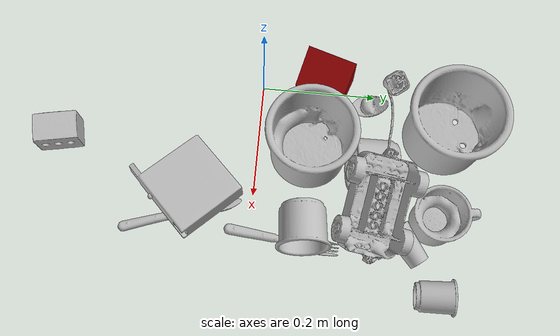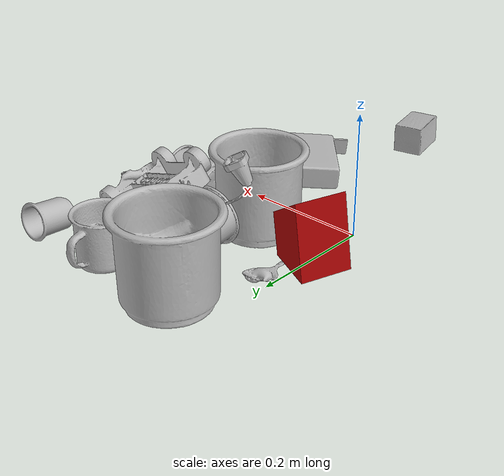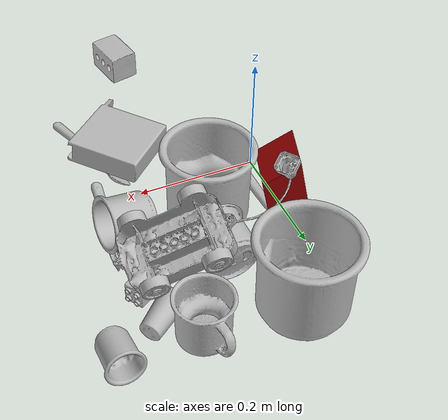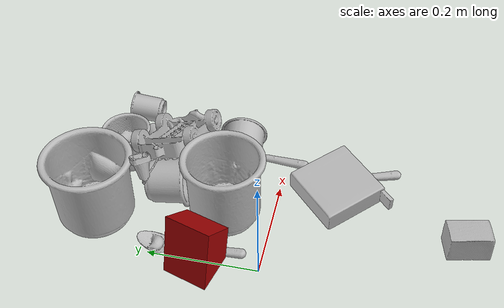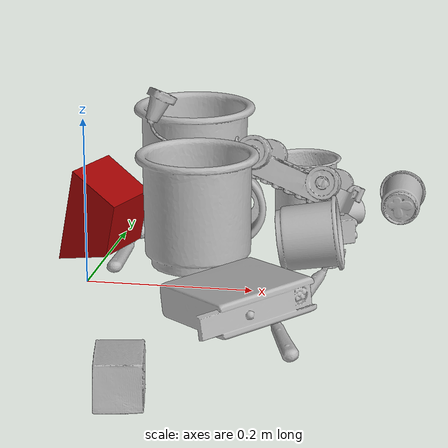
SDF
<sdf version="1.4">
  <world name="default">
    <light name="light1" type="point">
      <pose>0 0 1 0 0 0</pose>
      <diffuse>3 3 3 1</diffuse>
      <specular>3 3 3 1</specular>
    </light>
    <light name="light2" type="point">
      <pose>0 0.5 2 0 0 0</pose>
      <diffuse>1 1 1 1</diffuse>
      <specular>1 1 1 1</specular>
    </light>
    <light name="light3" type="point">
      <pose>0 0.5 2 0 0 0</pose>
      <diffuse>3 3 3 1</diffuse>
      <specular>3 3 3 1</specular>
    </light>
    <scene>
      <ambient>0.7 0.7 0.7</ambient>
    </scene>
    <model name="cup1">
      <link name="link_cup1">
        <collision name="default">
          <geometry>
            <mesh>
              <uri>model://i_cups/collision_meshes/collision.obj</uri>
              <scale>1.0 1.0 1.0</scale>
            </mesh>
          </geometry>
          <surface>
            <friction>
              <ode>
                <mu>0.5</mu>
                <mu2>0.5</mu2>
              </ode>
            </friction>
          <contact>
        <ode>
            <max_vel>0</max_vel>
            <min_depth>0.0001</min_depth>
            <kp>1e8</kp>
        </ode>
    </contact></surface>
        </collision>
        <visual name="default">
          <geometry>
            <mesh>
              <uri>model://i_cups/visual_meshes/visual.dae</uri>
              <scale>1.0 1.0 1.0</scale>
            </mesh>
          </geometry>
        </visual>
        <inertial>
          <mass>0.06118306145071983</mass>
          <pose>0.00011240330786677077 0.00016797454736661166 -0.0008579033892601728 -0.02898356853937009 -0.0398729445813228 -0.3459020996231002</pose>
          <inertia>
            <ixx>8.470886e-05</ixx>
            <iyy>8.5455235e-05</iyy>
            <izz>9.467588e-05</izz>
            <ixy>0</ixy>
            <ixz>0</ixz>
            <iyz>0</iyz>
          </inertia>
        </inertial>
      </link>
      <pose>0.137911856174469 0.1971147656440735 0.045090898871421814 -1.4454913836028682 -0.3477538787687133 -3.1110849873726925</pose>
    </model>
    <model name="silverware1">
      <link name="link_silverware1">
        <collision name="default">
          <geometry>
            <mesh>
              <uri>model://fork/collision_meshes/collision.obj</uri>
              <scale>1.0 1.0 1.0</scale>
            </mesh>
          </geometry>
          <surface>
            <friction>
              <ode>
                <mu>0.5</mu>
                <mu2>0.5</mu2>
              </ode>
            </friction>
          <contact>
        <ode>
            <max_vel>0</max_vel>
            <min_depth>0.0001</min_depth>
            <kp>1e8</kp>
        </ode>
    </contact></surface>
        </collision>
        <visual name="default">
          <geometry>
            <mesh>
              <uri>model://fork/visual_meshes/visual.dae</uri>
              <scale>1.0 1.0 1.0</scale>
            </mesh>
          </geometry>
        </visual>
        <inertial>
          <mass>0.031184576451778412</mass>
          <pose>-0.02957005426287651 0.00046588247641921043 0.0003218861820641905 -0.013551007459636681 -0.010977840933376642 0.014453907264632249</pose>
          <inertia>
            <ixx>1.0931959e-06</ixx>
            <iyy>8.1413935e-05</iyy>
            <izz>8.1902916e-05</izz>
            <ixy>0</ixy>
            <ixz>0</ixz>
            <iyz>0</iyz>
          </inertia>
        </inertial>
      </link>
      <pose>0.27397236227989197 0.05497124791145325 0.005225706845521927 -0.01686002213252174 0.05009357980873314 1.4702113845119376</pose>
    </model>
    <model name="cup2">
      <link name="link_cup2">
        <collision name="default">
          <geometry>
            <mesh>
              <uri>model://cup_small/collision_meshes/collision.obj</uri>
              <scale>1.0 1.0 1.0</scale>
            </mesh>
          </geometry>
          <surface>
            <friction>
              <ode>
                <mu>0.5</mu>
                <mu2>0.5</mu2>
              </ode>
            </friction>
          <contact>
        <ode>
            <max_vel>0</max_vel>
            <min_depth>0.0001</min_depth>
            <kp>1e8</kp>
        </ode>
    </contact></surface>
        </collision>
        <visual name="default">
          <geometry>
            <mesh>
              <uri>model://cup_small/visual_meshes/visual.dae</uri>
              <scale>1.0 1.0 1.0</scale>
            </mesh>
          </geometry>
        </visual>
        <inertial>
          <mass>0.03407767415046692</mass>
          <pose>0.0001048250705935061 -0.00033778452780097723 -0.010742825455963612 -0.011493231776776816 -0.015280154496379641 -0.5058119732839097</pose>
          <inertia>
            <ixx>2.0064415e-05</ixx>
            <iyy>2.0167918e-05</iyy>
            <izz>9.059144e-06</izz>
            <ixy>0</ixy>
            <ixz>0</ixz>
            <iyz>0</iyz>
          </inertia>
        </inertial>
      </link>
      <pose>0.2662173807621002 0.2664949297904968 0.020216787233948708 0.9435692638728823 -1.4373076129044606 -0.27826307907034953</pose>
    </model>
    <model name="silverware2">
      <link name="link_silverware2">
        <collision name="default">
          <geometry>
            <mesh>
              <uri>model://spoon/collision_meshes/collision.obj</uri>
              <scale>1.0 1.0 1.0</scale>
            </mesh>
          </geometry>
          <surface>
            <friction>
              <ode>
                <mu>0.5</mu>
                <mu2>0.5</mu2>
              </ode>
            </friction>
          <contact>
        <ode>
            <max_vel>0</max_vel>
            <min_depth>0.0001</min_depth>
            <kp>1e8</kp>
        </ode>
    </contact></surface>
        </collision>
        <visual name="default">
          <geometry>
            <mesh>
              <uri>model://spoon/visual_meshes/visual.dae</uri>
              <scale>1.0 1.0 1.0</scale>
            </mesh>
          </geometry>
        </visual>
        <inertial>
          <mass>0.016614587977528572</mass>
          <pose>-0.005526317749172449 -0.0016034182626754045 -0.0007271657232195139 0.03521671066550848 -0.039065848782153245 0.0061506117821598484</pose>
          <inertia>
            <ixx>9.241303e-07</ixx>
            <iyy>6.321795e-05</iyy>
            <izz>6.367369e-05</izz>
            <ixy>0</ixy>
            <ixz>0</ixz>
            <iyz>0</iyz>
          </inertia>
        </inertial>
      </link>
      <pose>0.019375192001461983 0.1260458379983902 0.00838090293109417 -0.051893142883563545 0.02641216033746181 1.6043006527798247</pose>
    </model>
    <model name="cup3">
      <link name="link_cup3">
        <collision name="default">
          <geometry>
            <mesh>
              <uri>model://mug/collision_meshes/collision.obj</uri>
              <scale>1.0 1.0 1.0</scale>
            </mesh>
          </geometry>
          <surface>
            <friction>
              <ode>
                <mu>0.5</mu>
                <mu2>0.5</mu2>
              </ode>
            </friction>
          <contact>
        <ode>
            <max_vel>0</max_vel>
            <min_depth>0.0001</min_depth>
            <kp>1e8</kp>
        </ode>
    </contact></surface>
        </collision>
        <visual name="default">
          <geometry>
            <mesh>
              <uri>model://mug/visual_meshes/visual.dae</uri>
              <scale>1.0 1.0 1.0</scale>
            </mesh>
          </geometry>
        </visual>
        <inertial>
          <mass>0.2187051922082901</mass>
          <pose>0.009571668691933155 0.0008143252925947309 -0.0109473317861557 -0.1298317614392908 0.08737757629698793 0.05507296169044089</pose>
          <inertia>
            <ixx>0.00021724429</ixx>
            <iyy>0.00024264908</iyy>
            <izz>0.00028062687</izz>
            <ixy>0</ixy>
            <ixz>0</ixz>
            <iyz>0</iyz>
          </inertia>
        </inertial>
      </link>
      <pose>0.21747452020645142 0.32034194469451904 0.040949366986751556 -2.987352175906911e-05 3.1296757378841e-05 -1.4240055473247306</pose>
    </model>
    <model name="silverware3">
      <link name="link_silverware3">
        <collision name="default">
          <geometry>
            <mesh>
              <uri>model://knife/collision_meshes/collision.obj</uri>
              <scale>1.0 1.0 1.0</scale>
            </mesh>
          </geometry>
          <surface>
            <friction>
              <ode>
                <mu>0.5</mu>
                <mu2>0.5</mu2>
              </ode>
            </friction>
          <contact>
        <ode>
            <max_vel>0</max_vel>
            <min_depth>0.0001</min_depth>
            <kp>1e8</kp>
        </ode>
    </contact></surface>
        </collision>
        <visual name="default">
          <geometry>
            <mesh>
              <uri>model://knife/visual_meshes/visual.dae</uri>
              <scale>1.0 1.0 1.0</scale>
            </mesh>
          </geometry>
        </visual>
        <inertial>
          <mass>0.02527560666203499</mass>
          <pose>-0.02378525398671627 0.0015275124460458755 5.062016498413868e-05 0.07305987488321217 0.01724841707462807 -0.007409821427235137</pose>
          <inertia>
            <ixx>7.174241e-07</ixx>
            <iyy>9.710476e-05</iyy>
            <izz>9.733581e-05</izz>
            <ixy>0</ixy>
            <ixz>0</ixz>
            <iyz>0</iyz>
          </inertia>
        </inertial>
      </link>
      <pose>0.24850934743881226 -0.11972462385892868 0.008113625459372997 -0.2240786848024878 -0.010656101877921223 1.8752030927615078</pose>
    </model>
    <model name="cup4">
      <link name="link_cup4">
        <collision name="default">
          <geometry>
            <mesh>
              <uri>model://f_cups/collision_meshes/collision.obj</uri>
              <scale>2.0 2.0 2.0</scale>
            </mesh>
          </geometry>
          <surface>
            <friction>
              <ode>
                <mu>0.5</mu>
                <mu2>0.5</mu2>
              </ode>
            </friction>
          <contact>
        <ode>
            <max_vel>0</max_vel>
            <min_depth>0.0001</min_depth>
            <kp>1e8</kp>
        </ode>
    </contact></surface>
        </collision>
        <visual name="default">
          <geometry>
            <mesh>
              <uri>model://f_cups/visual_meshes/visual.dae</uri>
              <scale>2.0 2.0 2.0</scale>
            </mesh>
          </geometry>
        </visual>
        <inertial>
          <mass>0.45639780163764954</mass>
          <pose>-0.006342936772853136 -0.0012480145087465644 -0.007311072666198015 0.7862311529960513 -0.2607925047248709 -0.18237200478465204</pose>
          <inertia>
            <ixx>0.0017161043</ixx>
            <iyy>0.0018002132</iyy>
            <izz>0.0018740727</izz>
            <ixy>0</ixy>
            <ixz>0</ixz>
            <iyz>0</iyz>
          </inertia>
        </inertial>
      </link>
      <pose>0.06835680454969406 0.31898730993270874 0.07261201739311218 -1.3747842924344905e-07 -2.650499405256658e-07 2.8065729920839764</pose>
    </model>
    <model name="cup41">
      <link name="link_cup41">
        <collision name="default">
          <geometry>
            <mesh>
              <uri>model://b_cups/collision_meshes/collision.obj</uri>
              <scale>1.0 1.0 1.0</scale>
            </mesh>
          </geometry>
          <surface>
            <friction>
              <ode>
                <mu>0.5</mu>
                <mu2>0.5</mu2>
              </ode>
            </friction>
          <contact>
        <ode>
            <max_vel>0</max_vel>
            <min_depth>0.0001</min_depth>
            <kp>1e8</kp>
        </ode>
    </contact></surface>
        </collision>
        <visual name="default">
          <geometry>
            <mesh>
              <uri>model://b_cups/visual_meshes/visual.dae</uri>
              <scale>1.0 1.0 1.0</scale>
            </mesh>
          </geometry>
        </visual>
        <inertial>
          <mass>0.02191556617617607</mass>
          <pose>0.0005182005115784705 0.0018058598507195711 -0.0013381809694692492 0.11356347292067202 0.038725069075056226 -0.34569439603942165</pose>
          <inertia>
            <ixx>1.4345273e-05</ixx>
            <iyy>1.4072923e-05</iyy>
            <izz>1.2071279e-05</izz>
            <ixy>0</ixy>
            <ixz>0</ixz>
            <iyz>0</iyz>
          </inertia>
        </inertial>
      </link>
      <pose>0.3477432429790497 0.3109341561794281 0.027763718739151955 -1.4789781643042381 -0.01002395111958243 0.027336113688217277</pose>
    </model>
    <model name="cup5">
      <link name="link_cup5">
        <collision name="default">
          <geometry>
            <mesh>
              <uri>model://e_cups/collision_meshes/collision.obj</uri>
              <scale>2.0 2.0 2.0</scale>
            </mesh>
          </geometry>
          <surface>
            <friction>
              <ode>
                <mu>0.5</mu>
                <mu2>0.5</mu2>
              </ode>
            </friction>
          <contact>
        <ode>
            <max_vel>0</max_vel>
            <min_depth>0.0001</min_depth>
            <kp>1e8</kp>
        </ode>
    </contact></surface>
        </collision>
        <visual name="default">
          <geometry>
            <mesh>
              <uri>model://e_cups/visual_meshes/visual.dae</uri>
              <scale>2.0 2.0 2.0</scale>
            </mesh>
          </geometry>
        </visual>
        <inertial>
          <mass>0.30448246002197266</mass>
          <pose>0.0022711469791829586 0.005759572610259056 -0.00776594178751111 0.6952384510578399 0.08767941436067322 -0.5235260729612989</pose>
          <inertia>
            <ixx>0.0010739095</ixx>
            <iyy>0.001122389</iyy>
            <izz>0.0010267813</izz>
            <ixy>0</ixy>
            <ixz>0</ixz>
            <iyz>0</iyz>
          </inertia>
        </inertial>
      </link>
      <pose>0.11748873442411423 0.08768656849861145 0.07120021432638168 -6.74533639968994e-06 4.268848543203527e-06 3.085765624612968</pose>
    </model>
    <model name="cup51">
      <link name="link_cup51">
        <collision name="default">
          <geometry>
            <mesh>
              <uri>model://h_cups/collision_meshes/collision.obj</uri>
              <scale>1.0 1.0 1.0</scale>
            </mesh>
          </geometry>
          <surface>
            <friction>
              <ode>
                <mu>0.5</mu>
                <mu2>0.5</mu2>
              </ode>
            </friction>
          <contact>
        <ode>
            <max_vel>0</max_vel>
            <min_depth>0.0001</min_depth>
            <kp>1e8</kp>
        </ode>
    </contact></surface>
        </collision>
        <visual name="default">
          <geometry>
            <mesh>
              <uri>model://h_cups/visual_meshes/visual.dae</uri>
              <scale>1.0 1.0 1.0</scale>
            </mesh>
          </geometry>
        </visual>
        <inertial>
          <mass>0.042455922812223434</mass>
          <pose>-2.703044083318673e-05 0.00023018660431262106 -0.0018405403243377805 -0.024361995264993386 0.06545231449212868 0.1288536550905752</pose>
          <inertia>
            <ixx>5.4829856e-05</ixx>
            <iyy>5.4175573e-05</iyy>
            <izz>5.7501496e-05</izz>
            <ixy>0</ixy>
            <ixz>0</ixz>
            <iyz>0</iyz>
          </inertia>
        </inertial>
      </link>
      <pose>0.255367636680603 0.08854466676712036 0.043067123740911484 -1.3986729986841393 0.6286986251991737 -1.3718659997425402</pose>
    </model>
    <model name="toy1">
      <link name="link_toy1">
        <collision name="default">
          <geometry>
            <mesh>
              <uri>model://f_lego_duplo/collision_meshes/collision.obj</uri>
              <scale>1.0 1.0 1.0</scale>
            </mesh>
          </geometry>
          <surface>
            <friction>
              <ode>
                <mu>0.5</mu>
                <mu2>0.5</mu2>
              </ode>
            </friction>
          <contact>
        <ode>
            <max_vel>0</max_vel>
            <min_depth>0.0001</min_depth>
            <kp>1e8</kp>
        </ode>
    </contact></surface>
        </collision>
        <visual name="default">
          <geometry>
            <mesh>
              <uri>model://f_lego_duplo/visual_meshes/visual.dae</uri>
              <scale>1.0 1.0 1.0</scale>
            </mesh>
          </geometry>
        </visual>
        <inertial>
          <mass>0.02241816557943821</mass>
          <pose>2.3694117771810852e-05 0.0001339316659141332 0.0018837875686585903 0.029838520561624126 -0.014425134948969536 -0.6756620822172864</pose>
          <inertia>
            <ixx>4.7370827e-06</ixx>
            <iyy>4.779284e-06</iyy>
            <izz>4.1119874e-06</izz>
            <ixy>0</ixy>
            <ixz>0</ixz>
            <iyz>0</iyz>
          </inertia>
        </inertial>
      </link>
      <pose>0.2762646973133087 0.20650096237659454 0.016231831163167953 1.9266007501883309 1.5693188032392862 2.4695931887632625</pose>
    </model>
    <model name="toy2">
      <link name="link_toy2">
        <collision name="default">
          <geometry>
            <mesh>
              <uri>model://nine_hole_peg_test/collision_meshes/collision.obj</uri>
              <scale>1.0 1.0 1.0</scale>
            </mesh>
          </geometry>
          <surface>
            <friction>
              <ode>
                <mu>0.5</mu>
                <mu2>0.5</mu2>
              </ode>
            </friction>
          <contact>
        <ode>
            <max_vel>0</max_vel>
            <min_depth>0.0001</min_depth>
            <kp>1e8</kp>
        </ode>
    </contact></surface>
        </collision>
        <visual name="default">
          <geometry>
            <mesh>
              <uri>model://nine_hole_peg_test/visual_meshes/visual.dae</uri>
              <scale>1.0 1.0 1.0</scale>
            </mesh>
          </geometry>
        </visual>
        <inertial>
          <mass>0.9336897134780884</mass>
          <pose>-0.004617386497557163 -0.009647615253925323 2.6460686058271676e-05 -0.0014666796876693252 0.0007194179493738156 -0.6342417556307235</pose>
          <inertia>
            <ixx>0.0014599775</ixx>
            <iyy>0.0013631656</iyy>
            <izz>0.0025583105</izz>
            <ixy>0</ixy>
            <ixz>0</ixz>
            <iyz>0</iyz>
          </inertia>
        </inertial>
      </link>
      <pose>0.19720865786075592 -0.1170077696442604 0.029206762090325356 -3.066685250648717 -0.07765992232668824 -0.8031388772374235</pose>
    </model>
    <model name="toy3">
      <link name="link_toy3">
        <collision name="default">
          <geometry>
            <mesh>
              <uri>model://prism/collision_meshes/collision.obj</uri>
              <scale>1.0 1.0 1.0</scale>
            </mesh>
          </geometry>
          <surface>
            <friction>
              <ode>
                <mu>0.5</mu>
                <mu2>0.5</mu2>
              </ode>
            </friction>
          <contact>
        <ode>
            <max_vel>0</max_vel>
            <min_depth>0.0001</min_depth>
            <kp>1e8</kp>
        </ode>
    </contact></surface>
        </collision>
        <visual name="default">
          <geometry>
            <mesh>
              <uri>model://prism/visual_meshes/visual.dae</uri>
              <scale>1.0 1.0 1.0</scale>
            </mesh>
          </geometry>
        </visual>
        <inertial>
          <mass>0.45664992928504944</mass>
          <pose>-9.85359656624496e-05 -4.96157269935793e-07 -0.0033869100734591484 0.0 0.006559178903460961 0.0</pose>
          <inertia>
            <ixx>0.0004121209</ixx>
            <iyy>0.00049805344</iyy>
            <izz>0.0006100559</izz>
            <ixy>0</ixy>
            <ixz>0</ixz>
            <iyz>0</iyz>
          </inertia>
        </inertial>
      </link>
      <pose>-0.0029847794212400913 0.10644311457872391 0.05111259967088699 -3.119087364602294 -1.3668830407845998 -0.32963682944050315</pose>
    </model>
    <model name="toy4">
      <link name="link_toy4">
        <collision name="default">
          <geometry>
            <mesh>
              <uri>model://g_lego_duplo/collision_meshes/collision.obj</uri>
              <scale>1.0 1.0 1.0</scale>
            </mesh>
          </geometry>
          <surface>
            <friction>
              <ode>
                <mu>0.5</mu>
                <mu2>0.5</mu2>
              </ode>
            </friction>
          <contact>
        <ode>
            <max_vel>0</max_vel>
            <min_depth>0.0001</min_depth>
            <kp>1e8</kp>
        </ode>
    </contact></surface>
        </collision>
        <visual name="default">
          <geometry>
            <mesh>
              <uri>model://g_lego_duplo/visual_meshes/visual.dae</uri>
              <scale>1.0 1.0 1.0</scale>
            </mesh>
          </geometry>
        </visual>
        <inertial>
          <mass>0.39620378613471985</mass>
          <pose>-0.05004769191145897 0.0017554654041305184 0.003880677744746208 0.010963058510667364 0.03810828654928447 -0.09653021192595126</pose>
          <inertia>
            <ixx>0.0005741041</ixx>
            <iyy>0.0017357017</iyy>
            <izz>0.0021714251</izz>
            <ixy>0</ixy>
            <ixz>0</ixz>
            <iyz>0</iyz>
          </inertia>
        </inertial>
      </link>
      <pose>0.1629491001367569 0.20783314108848572 0.10777037590742111 -2.8264735489067747 -0.3380021028432425 2.9889589523059397</pose>
    </model>
    <model name="toy5">
      <link name="link_toy5">
        <collision name="default">
          <geometry>
            <mesh>
              <uri>model://foam_brick/collision_meshes/collision.obj</uri>
              <scale>1.0 1.0 1.0</scale>
            </mesh>
          </geometry>
          <surface>
            <friction>
              <ode>
                <mu>0.5</mu>
                <mu2>0.5</mu2>
              </ode>
            </friction>
          <contact>
        <ode>
            <max_vel>0</max_vel>
            <min_depth>0.0001</min_depth>
            <kp>1e8</kp>
        </ode>
    </contact></surface>
        </collision>
        <visual name="default">
          <geometry>
            <mesh>
              <uri>model://foam_brick/visual_meshes/visual.dae</uri>
              <scale>1.0 1.0 1.0</scale>
            </mesh>
          </geometry>
        </visual>
        <inertial>
          <mass>0.10564772039651871</mass>
          <pose>-0.00025224717683158815 0.00034584361128509045 -0.00025321010616607964 -0.29402271699624904 0.017274444128295662 -0.0007449905040366932</pose>
          <inertia>
            <ixx>4.6148893e-05</ixx>
            <iyy>7.367908e-05</iyy>
            <izz>7.4615455e-05</izz>
            <ixy>0</ixy>
            <ixz>0</ixz>
            <iyz>0</iyz>
          </inertia>
        </inertial>
      </link>
      <pose>0.12354131788015366 -0.3476540446281433 0.026264922693371773 -1.5819337420712452 -0.01272888388322642 -1.3725131754483888</pose>
    </model>
  <physics type="ode">
      <max_contacts>50</max_contacts>
      <ode>
        <solver>
          <type>quick</type>
          <iters>75</iters>
        </solver>
        <constraints>
          <contact_max_correcting_vel>0</contact_max_correcting_vel>
          <contact_surface_layer>0</contact_surface_layer>
        </constraints>
      </ode>
    </physics></world>
</sdf>
